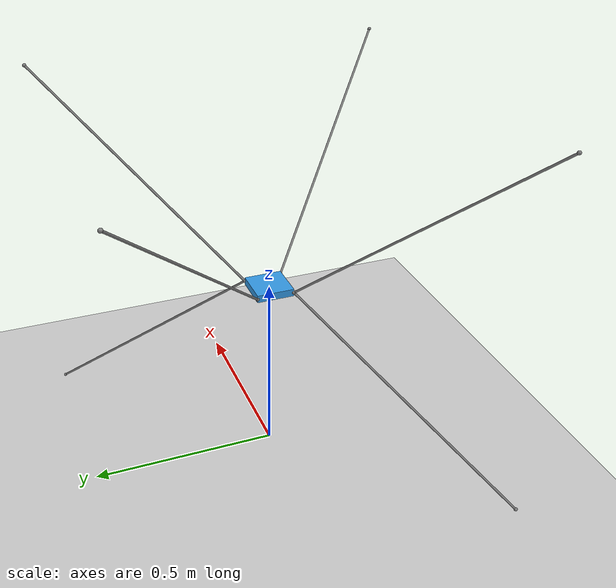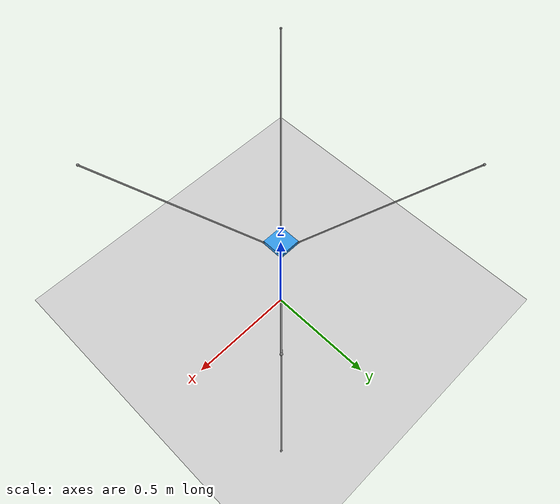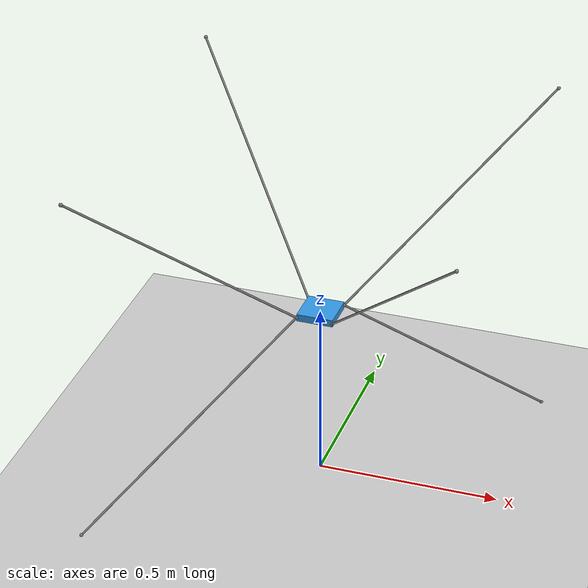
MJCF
<mujoco model="cable_robot">

  <option timestep="0.001" gravity="0 0 -9.81"/>

  <!-- Visualize world -->
  <worldbody>
    <geom type="plane" pos="0 0 0" size="5 5 0.1" rgba="0.8 0.8 0.8 1"/>

    <!-- Anchors -->
    <site name="a1" pos=" 0.5  0.5  1.0"/>
    <site name="a2" pos=" 0.5 -0.5  1.0"/>
    <site name="a3" pos="-0.5  0.5  1.0"/>
    <site name="a4" pos="-0.5 -0.5  1.0"/>
    <site name="a5" pos=" 0.5  0.5  0.0"/>
    <site name="a6" pos="-0.5 -0.5  0.0"/>

    <!-- Moving platform -->
    <body name="platform" pos="0 0 0.5">
      <freejoint/>
      <geom type="box" size="0.05 0.05 0.01" rgba="0.2 0.6 0.9 1"/>

      <!-- Cable attachment points on platform -->
      <site name="p1" pos=" 0.05  0.05 0"/>
      <site name="p2" pos=" 0.05 -0.05 0"/>
      <site name="p3" pos="-0.05  0.05 0"/>
      <site name="p4" pos="-0.05 -0.05 0"/>
      <site name="p5" pos=" 0.05  0.05 0"/>
      <site name="p6" pos="-0.05 -0.05 0"/>
    </body>
  </worldbody>

  <!-- Tendons: anchors to platform sites -->
  <tendon>
    <spatial name="cable1" stiffness="500" damping="1" springlength="0.7">
      <site site="a1"/>
      <site site="p1"/>
    </spatial>
    <spatial name="cable2" stiffness="500" damping="1" springlength="0.7">
      <site site="a2"/>
      <site site="p2"/>
    </spatial>
    <spatial name="cable3" stiffness="500" damping="1" springlength="0.7">
      <site site="a3"/>
      <site site="p3"/>
    </spatial>
    <spatial name="cable4" stiffness="500" damping="1" springlength="0.7">
      <site site="a4"/>
      <site site="p4"/>
    </spatial>
    <spatial name="cable5" stiffness="500" damping="1" springlength="0.7">
      <site site="a5"/>
      <site site="p5"/>
    </spatial>
    <spatial name="cable6" stiffness="500" damping="1" springlength="0.7">
      <site site="a6"/>
      <site site="p6"/>
    </spatial>
  </tendon>

  <!-- Actuators: pull on each tendon -->
<actuator>
  <position name="m1" tendon="cable1" kp="500"/>
  <position name="m2" tendon="cable2" kp="500"/>
  <position name="m3" tendon="cable3" kp="500"/>
  <position name="m4" tendon="cable4" kp="500"/>
  <position name="m5" tendon="cable5" kp="500"/>
  <position name="m6" tendon="cable6" kp="500"/>
</actuator>

</mujoco>
